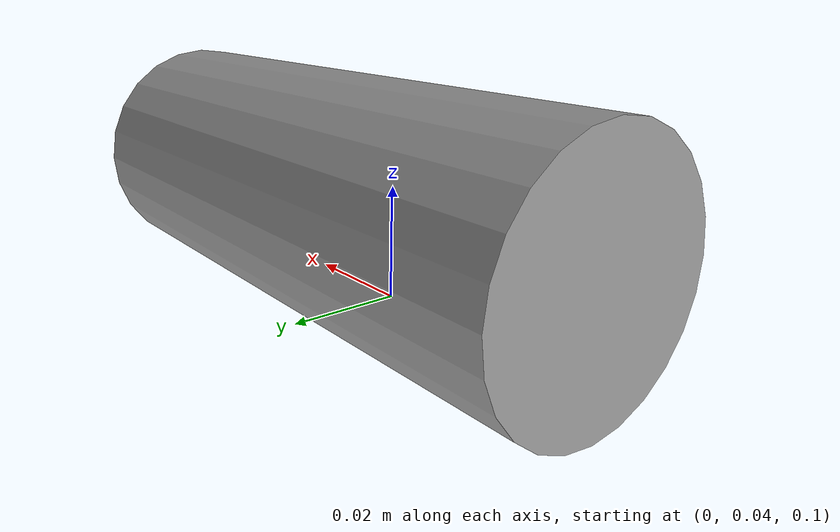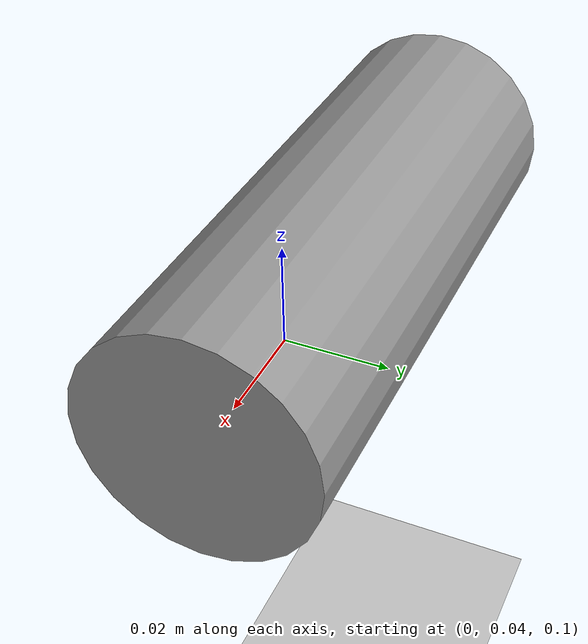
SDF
<sdf version='1.4'>
  <world name='default'>
    <model name='ground_plane'>
      <static>1</static>
      <link name='link'>
        <collision name='collision'>
          <geometry>
            <plane>
              <normal>0 0 1</normal>
              <size>100 100</size>
            </plane>
          </geometry>
          <surface>
            <friction>
              <ode>
                <mu>100</mu>
                <mu2>50</mu2>
              </ode>
            </friction>
            <bounce/>
            <contact>
              <ode/>
            </contact>
          </surface>
          <max_contacts>10</max_contacts>
        </collision>
        <visual name='visual'>
          <cast_shadows>0</cast_shadows>
          <geometry>
            <plane>
              <normal>0 0 1</normal>
              <size>100 100</size>
            </plane>
          </geometry>
          <material>
            <script>
              <uri>file://media/materials/scripts/gazebo.material</uri>
              <name>Gazebo/Grey</name>
            </script>
          </material>
        </visual>
        <velocity_decay>
          <linear>0</linear>
          <angular>0</angular>
        </velocity_decay>
        <self_collide>0</self_collide>
        <kinematic>0</kinematic>
        <gravity>1</gravity>
      </link>
    </model>
    <light name='sun' type='directional'>
      <cast_shadows>1</cast_shadows>
      <pose>0 0 10 0 -0 0</pose>
      <diffuse>0.8 0.8 0.8 1</diffuse>
      <specular>0.1 0.1 0.1 1</specular>
      <attenuation>
        <range>1000</range>
        <constant>0.9</constant>
        <linear>0.1</linear>
        <quadratic>0.01</quadratic>
      </attenuation>
      <direction>0.5 0 -1</direction>
    </light>
    <physics type='ode'>
      <gravity>0 0 -9.8</gravity>
      <max_step_size>0.001</max_step_size>
      <real_time_factor>1</real_time_factor>
      <real_time_update_rate>1000</real_time_update_rate>
    </physics>
    <scene>
      <ambient>0.4 0.4 0.4 1</ambient>
      <background>0.7 0.7 0.7 1</background>
      <shadows>1</shadows>
    </scene>
    <spherical_coordinates>
      <surface_model>EARTH_WGS84</surface_model>
      <latitude_deg>0</latitude_deg>
      <longitude_deg>0</longitude_deg>
      <elevation>0</elevation>
      <heading_deg>0</heading_deg>
    </spherical_coordinates>

    <model name='unit_cylinder_1'>
      <pose>0 0.05 0.120 0 1.57 0</pose>
      <link name='link'>
        <inertial>
          <mass>1</mass>
          <inertia>
            <ixx>1</ixx>
            <ixy>0</ixy>
            <ixz>0</ixz>
            <iyy>1</iyy>
            <iyz>0</iyz>
            <izz>1</izz>
          </inertia>
        </inertial>
        <collision name='collision'>
          <geometry>
            <cylinder>
              <radius>0.02</radius>
              <length>0.1</length>
            </cylinder>
          </geometry>
          <max_contacts>10</max_contacts>
          <surface>
            <bounce/>
            <friction>
              <ode/>
            </friction>
            <contact>
              <ode/>
            </contact>
          </surface>
        </collision>
        <visual name='visual'>
          <geometry>
            <cylinder>
              <radius>0.02</radius>
              <length>0.1</length>
            </cylinder>
          </geometry>
          <material>
            <script>
              <uri>file://media/materials/scripts/gazebo.material</uri>
              <name>Gazebo/Grey</name>
            </script>
          </material>
        </visual>
        <velocity_decay>
          <linear>0</linear>
          <angular>0</angular>
        </velocity_decay>
        <self_collide>0</self_collide>
        <kinematic>0</kinematic>
        <gravity>1</gravity>
      </link>
      <static>0</static>
    </model>
    <gui fullscreen='0'>
      <camera name='user_camera'>
        <pose>0.240379 -0.238591 1.18388 -1.45017e-17 0.29441 2.35518</pose>
        <view_controller>orbit</view_controller>
      </camera>
    </gui>
  </world>
</sdf>
